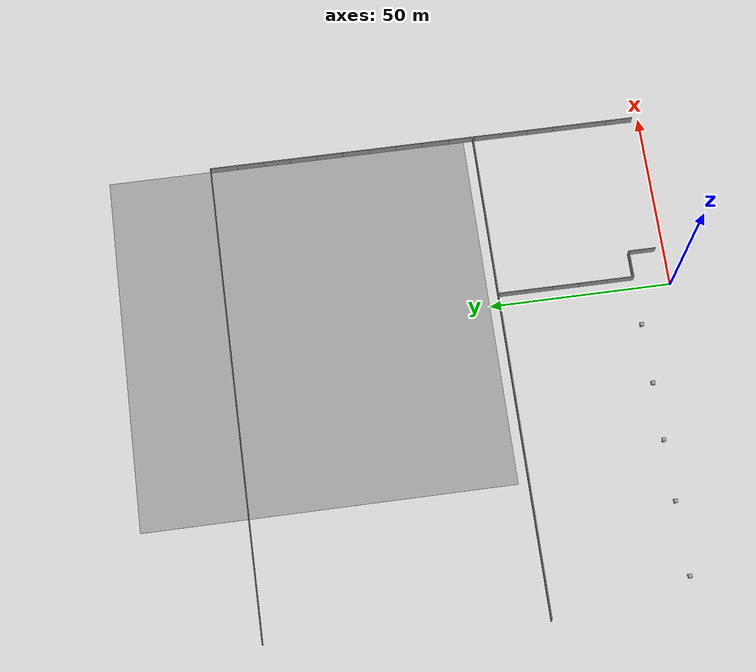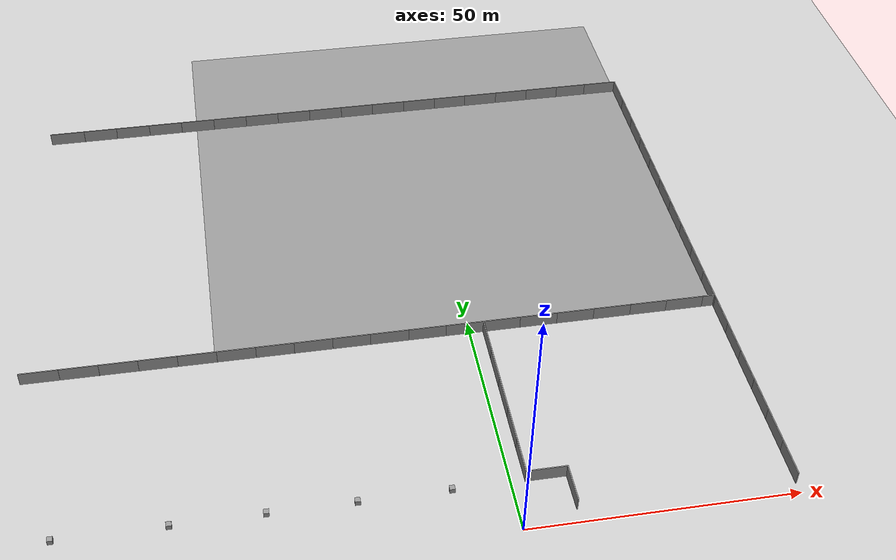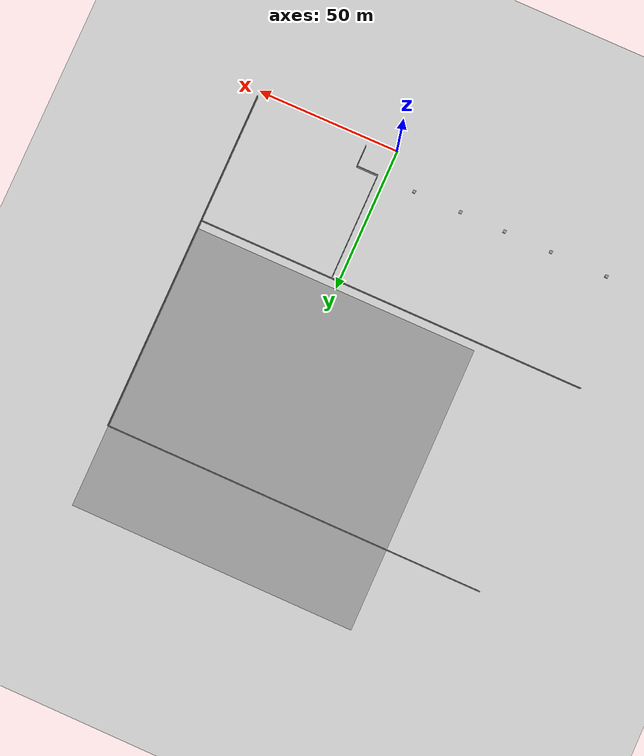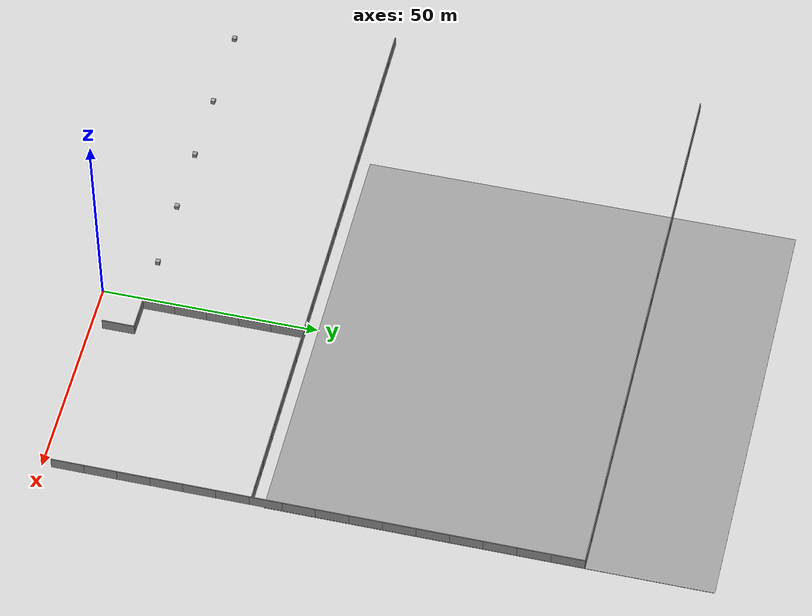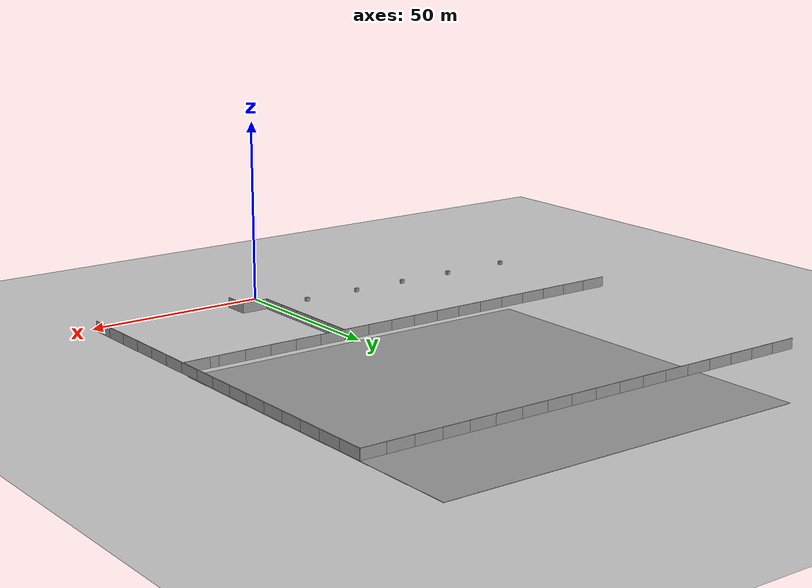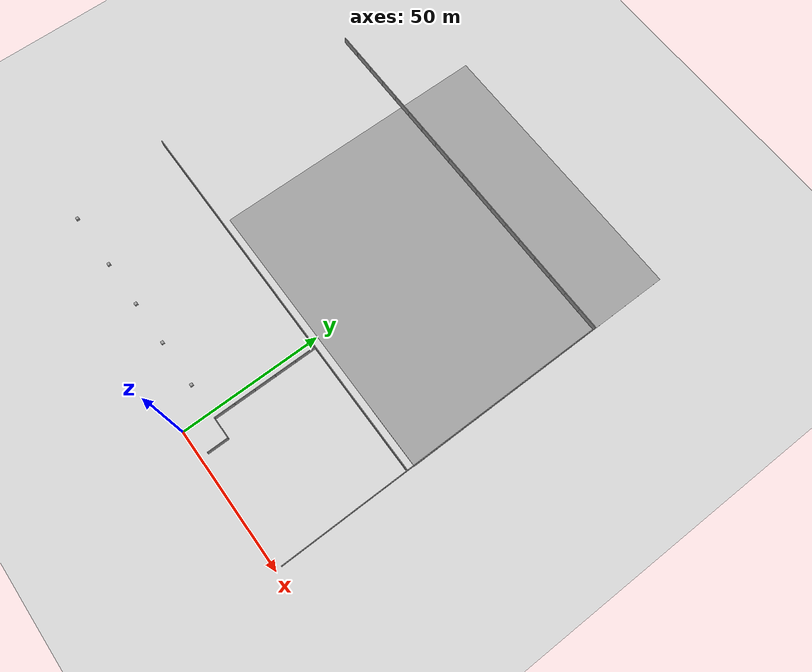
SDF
<sdf version="1.7">
 <world name="default">
  <model name="ground_plane">
   <static>1</static>
   <link name="link">
    <collision name="collision">
     <geometry><plane><normal>0 0 1</normal><size>100 100</size></plane></geometry>
     <surface>
      <contact><collide_bitmask>65535</collide_bitmask></contact>
      <friction><ode><mu>100</mu><mu2>50</mu2></ode></friction>
     </surface>
    </collision>
    <visual name="visual">
     <cast_shadows>0</cast_shadows>
     <geometry><plane><normal>0 0 1</normal><size>100 100</size></plane></geometry>
     <material>
      <script><uri>file://media/materials/scripts/gazebo.material</uri><name>Gazebo/Grey</name></script>
     </material>
    </visual>
   </link>
  </model>
  <model name="ground_plane_0">
   <static>1</static>
   <link name="link">
    <collision name="collision">
     <geometry><plane><normal>0 0 1</normal><size>100 100</size></plane></geometry>
     <surface>
      <contact><collide_bitmask>65535</collide_bitmask></contact>
      <friction><ode><mu>100</mu><mu2>50</mu2></ode></friction>
     </surface>
    </collision>
    <visual name="visual">
     <cast_shadows>0</cast_shadows>
     <geometry><plane><normal>0 0 1</normal><size>100 100</size></plane></geometry>
     <material>
      <script><uri>file://media/materials/scripts/gazebo.material</uri><name>Gazebo/Grey</name></script>
     </material>
    </visual>
   </link>
   <pose>0.002609 100.193 0 0 -0 0</pose>
  </model>
  <model name="grey_wall_clone_21_clone_21_clone_7">
   <static>1</static>
   <link name="link">
    <pose>0 0 1.4 0 -0 0</pose>
    <collision name="collision"><geometry><box><size>7.5 0.2 2.8</size></box></geometry></collision>
    <visual name="visual">
     <cast_shadows>0</cast_shadows>
     <geometry><box><size>7.5 0.2 2.8</size></box></geometry>
     <material>
      <script>
       <uri>model://grey_wall/materials/scripts</uri>
       <uri>model://grey_wall/materials/textures</uri>
       <name>vrc/grey_wall</name>
      </script>
     </material>
    </visual>
   </link>
   <pose>-79.2923 121.595 0 0 -0 0</pose>
  </model>
  <model name="grey_wall_clone_21_clone_21_clone_8">
   <static>1</static>
   <link name="link">
    <pose>0 0 1.4 0 -0 0</pose>
    <collision name="collision"><geometry><box><size>7.5 0.2 2.8</size></box></geometry></collision>
    <visual name="visual">
     <cast_shadows>0</cast_shadows>
     <geometry><box><size>7.5 0.2 2.8</size></box></geometry>
     <material>
      <script>
       <uri>model://grey_wall/materials/scripts</uri>
       <uri>model://grey_wall/materials/textures</uri>
       <name>vrc/grey_wall</name>
      </script>
     </material>
    </visual>
   </link>
   <pose>-71.929 121.602 0 0 -0 0</pose>
  </model>
  <model name="grey_wall_clone_21_clone_21_clone_9">
   <static>1</static>
   <link name="link">
    <pose>0 0 1.4 0 -0 0</pose>
    <collision name="collision"><geometry><box><size>7.5 0.2 2.8</size></box></geometry></collision>
    <visual name="visual">
     <cast_shadows>0</cast_shadows>
     <geometry><box><size>7.5 0.2 2.8</size></box></geometry>
     <material>
      <script>
       <uri>model://grey_wall/materials/scripts</uri>
       <uri>model://grey_wall/materials/textures</uri>
       <name>vrc/grey_wall</name>
      </script>
     </material>
    </visual>
   </link>
   <pose>-64.5064 121.602 0 0 -0 0</pose>
  </model>
  <model name="grey_wall_clone_21_clone_21_clone_10">
   <static>1</static>
   <link name="link">
    <pose>0 0 1.4 0 -0 0</pose>
    <collision name="collision"><geometry><box><size>7.5 0.2 2.8</size></box></geometry></collision>
    <visual name="visual">
     <cast_shadows>0</cast_shadows>
     <geometry><box><size>7.5 0.2 2.8</size></box></geometry>
     <material>
      <script>
       <uri>model://grey_wall/materials/scripts</uri>
       <uri>model://grey_wall/materials/textures</uri>
       <name>vrc/grey_wall</name>
      </script>
     </material>
    </visual>
   </link>
   <pose>-57.1247 121.608 0 0 -0 0</pose>
  </model>
  <model name="grey_wall_clone_21_clone_21_clone_11">
   <static>1</static>
   <link name="link">
    <pose>0 0 1.4 0 -0 0</pose>
    <collision name="collision"><geometry><box><size>7.5 0.2 2.8</size></box></geometry></collision>
    <visual name="visual">
     <cast_shadows>0</cast_shadows>
     <geometry><box><size>7.5 0.2 2.8</size></box></geometry>
     <material>
      <script>
       <uri>model://grey_wall/materials/scripts</uri>
       <uri>model://grey_wall/materials/textures</uri>
       <name>vrc/grey_wall</name>
      </script>
     </material>
    </visual>
   </link>
   <pose>-49.6689 121.608 0 0 -0 0</pose>
  </model>
  <model name="grey_wall_clone_21_clone_21_clone_12">
   <static>1</static>
   <link name="link">
    <pose>0 0 1.4 0 -0 0</pose>
    <collision name="collision"><geometry><box><size>7.5 0.2 2.8</size></box></geometry></collision>
    <visual name="visual">
     <cast_shadows>0</cast_shadows>
     <geometry><box><size>7.5 0.2 2.8</size></box></geometry>
     <material>
      <script>
       <uri>model://grey_wall/materials/scripts</uri>
       <uri>model://grey_wall/materials/textures</uri>
       <name>vrc/grey_wall</name>
      </script>
     </material>
    </visual>
   </link>
   <pose>-42.214 121.614 0 0 -0 0</pose>
  </model>
  <model name="grey_wall_clone_21_clone_21_clone_13">
   <static>1</static>
   <link name="link">
    <pose>0 0 1.4 0 -0 0</pose>
    <collision name="collision"><geometry><box><size>7.5 0.2 2.8</size></box></geometry></collision>
    <visual name="visual">
     <cast_shadows>0</cast_shadows>
     <geometry><box><size>7.5 0.2 2.8</size></box></geometry>
     <material>
      <script>
       <uri>model://grey_wall/materials/scripts</uri>
       <uri>model://grey_wall/materials/textures</uri>
       <name>vrc/grey_wall</name>
      </script>
     </material>
    </visual>
   </link>
   <pose>-34.7998 121.616 0 0 -0 0</pose>
  </model>
  <model name="grey_wall_clone_21_clone_21_clone_14">
   <static>1</static>
   <link name="link">
    <pose>0 0 1.4 0 -0 0</pose>
    <collision name="collision"><geometry><box><size>7.5 0.2 2.8</size></box></geometry></collision>
    <visual name="visual">
     <cast_shadows>0</cast_shadows>
     <geometry><box><size>7.5 0.2 2.8</size></box></geometry>
     <material>
      <script>
       <uri>model://grey_wall/materials/scripts</uri>
       <uri>model://grey_wall/materials/textures</uri>
       <name>vrc/grey_wall</name>
      </script>
     </material>
    </visual>
   </link>
   <pose>-27.3968 121.621 0 0 -0 0</pose>
  </model>
  <model name="grey_wall_clone_21_clone_21_clone_15">
   <static>1</static>
   <link name="link">
    <pose>0 0 1.4 0 -0 0</pose>
    <collision name="collision"><geometry><box><size>7.5 0.2 2.8</size></box></geometry></collision>
    <visual name="visual">
     <cast_shadows>0</cast_shadows>
     <geometry><box><size>7.5 0.2 2.8</size></box></geometry>
     <material>
      <script>
       <uri>model://grey_wall/materials/scripts</uri>
       <uri>model://grey_wall/materials/textures</uri>
       <name>vrc/grey_wall</name>
      </script>
     </material>
    </visual>
   </link>
   <pose>-19.9142 121.625 0 0 -0 0</pose>
  </model>
  <model name="grey_wall_clone_21_clone_21_clone_16">
   <static>1</static>
   <link name="link">
    <pose>0 0 1.4 0 -0 0</pose>
    <collision name="collision"><geometry><box><size>7.5 0.2 2.8</size></box></geometry></collision>
    <visual name="visual">
     <cast_shadows>0</cast_shadows>
     <geometry><box><size>7.5 0.2 2.8</size></box></geometry>
     <material>
      <script>
       <uri>model://grey_wall/materials/scripts</uri>
       <uri>model://grey_wall/materials/textures</uri>
       <name>vrc/grey_wall</name>
      </script>
     </material>
    </visual>
   </link>
   <pose>-12.5105 121.626 0 0 -0 0</pose>
  </model>
  <model name="grey_wall_clone_21_clone_21_clone_17">
   <static>1</static>
   <link name="link">
    <pose>0 0 1.4 0 -0 0</pose>
    <collision name="collision"><geometry><box><size>7.5 0.2 2.8</size></box></geometry></collision>
    <visual name="visual">
     <cast_shadows>0</cast_shadows>
     <geometry><box><size>7.5 0.2 2.8</size></box></geometry>
     <material>
      <script>
       <uri>model://grey_wall/materials/scripts</uri>
       <uri>model://grey_wall/materials/textures</uri>
       <name>vrc/grey_wall</name>
      </script>
     </material>
    </visual>
   </link>
   <pose>-5.09047 121.63 0 0 -0 0</pose>
  </model>
  <model name="grey_wall_clone_21_clone_21_clone_18">
   <static>1</static>
   <link name="link">
    <pose>0 0 1.4 0 -0 0</pose>
    <collision name="collision"><geometry><box><size>7.5 0.2 2.8</size></box></geometry></collision>
    <visual name="visual">
     <cast_shadows>0</cast_shadows>
     <geometry><box><size>7.5 0.2 2.8</size></box></geometry>
     <material>
      <script>
       <uri>model://grey_wall/materials/scripts</uri>
       <uri>model://grey_wall/materials/textures</uri>
       <name>vrc/grey_wall</name>
      </script>
     </material>
    </visual>
   </link>
   <pose>2.23805 121.637 0 0 -0 0</pose>
  </model>
  <model name="grey_wall_clone_21_clone_21_clone_19">
   <static>1</static>
   <link name="link">
    <pose>0 0 1.4 0 -0 0</pose>
    <collision name="collision"><geometry><box><size>7.5 0.2 2.8</size></box></geometry></collision>
    <visual name="visual">
     <cast_shadows>0</cast_shadows>
     <geometry><box><size>7.5 0.2 2.8</size></box></geometry>
     <material>
      <script>
       <uri>model://grey_wall/materials/scripts</uri>
       <uri>model://grey_wall/materials/textures</uri>
       <name>vrc/grey_wall</name>
      </script>
     </material>
    </visual>
   </link>
   <pose>9.66218 121.639 0 0 -0 0</pose>
  </model>
  <model name="grey_wall_clone_21_clone_21_clone_20">
   <static>1</static>
   <link name="link">
    <pose>0 0 1.4 0 -0 0</pose>
    <collision name="collision"><geometry><box><size>7.5 0.2 2.8</size></box></geometry></collision>
    <visual name="visual">
     <cast_shadows>0</cast_shadows>
     <geometry><box><size>7.5 0.2 2.8</size></box></geometry>
     <material>
      <script>
       <uri>model://grey_wall/materials/scripts</uri>
       <uri>model://grey_wall/materials/textures</uri>
       <name>vrc/grey_wall</name>
      </script>
     </material>
    </visual>
   </link>
   <pose>17.0328 121.638 0 0 -0 0</pose>
  </model>
  <model name="grey_wall_clone_21_clone_21_clone_21">
   <static>1</static>
   <link name="link">
    <pose>0 0 1.4 0 -0 0</pose>
    <collision name="collision"><geometry><box><size>7.5 0.2 2.8</size></box></geometry></collision>
    <visual name="visual">
     <cast_shadows>0</cast_shadows>
     <geometry><box><size>7.5 0.2 2.8</size></box></geometry>
     <material>
      <script>
       <uri>model://grey_wall/materials/scripts</uri>
       <uri>model://grey_wall/materials/textures</uri>
       <name>vrc/grey_wall</name>
      </script>
     </material>
    </visual>
   </link>
   <pose>24.475 121.644 0 0 -0 0</pose>
  </model>
  <model name="grey_wall_clone_21_clone_21_clone_22">
   <static>1</static>
   <link name="link">
    <pose>0 0 1.4 0 -0 0</pose>
    <collision name="collision"><geometry><box><size>7.5 0.2 2.8</size></box></geometry></collision>
    <visual name="visual">
     <cast_shadows>0</cast_shadows>
     <geometry><box><size>7.5 0.2 2.8</size></box></geometry>
     <material>
      <script>
       <uri>model://grey_wall/materials/scripts</uri>
       <uri>model://grey_wall/materials/textures</uri>
       <name>vrc/grey_wall</name>
      </script>
     </material>
    </visual>
   </link>
   <pose>31.9378 121.656 0 0 -0 0</pose>
  </model>
  <model name="grey_wall_clone_21_clone_21_clone_23">
   <static>1</static>
   <link name="link">
    <pose>0 0 1.4 0 -0 0</pose>
    <collision name="collision"><geometry><box><size>7.5 0.2 2.8</size></box></geometry></collision>
    <visual name="visual">
     <cast_shadows>0</cast_shadows>
     <geometry><box><size>7.5 0.2 2.8</size></box></geometry>
     <material>
      <script>
       <uri>model://grey_wall/materials/scripts</uri>
       <uri>model://grey_wall/materials/textures</uri>
       <name>vrc/grey_wall</name>
      </script>
     </material>
    </visual>
   </link>
   <pose>39.3665 121.653 0 0 -0 0</pose>
  </model>
  <model name="grey_wall_clone_21_clone_21_clone_24">
   <static>1</static>
   <link name="link">
    <pose>0 0 1.4 0 -0 0</pose>
    <collision name="collision"><geometry><box><size>7.5 0.2 2.8</size></box></geometry></collision>
    <visual name="visual">
     <cast_shadows>0</cast_shadows>
     <geometry><box><size>7.5 0.2 2.8</size></box></geometry>
     <material>
      <script>
       <uri>model://grey_wall/materials/scripts</uri>
       <uri>model://grey_wall/materials/textures</uri>
       <name>vrc/grey_wall</name>
      </script>
     </material>
    </visual>
   </link>
   <pose>46.1929 121.652 0 0 -0 0</pose>
  </model>
  <model name="grey_wall_clone_21_clone_20_clone">
   <static>1</static>
   <link name="link">
    <pose>0 0 1.4 0 -0 0</pose>
    <collision name="collision"><geometry><box><size>7.5 0.2 2.8</size></box></geometry></collision>
    <visual name="visual">
     <cast_shadows>0</cast_shadows>
     <geometry><box><size>7.5 0.2 2.8</size></box></geometry>
     <material>
      <script>
       <uri>model://grey_wall/materials/scripts</uri>
       <uri>model://grey_wall/materials/textures</uri>
       <name>vrc/grey_wall</name>
      </script>
     </material>
    </visual>
   </link>
   <pose>49.8458 117.894 0 0 -0 1.57</pose>
  </model>
  <model name="grey_wall_clone_21_clone_20_clone_0">
   <static>1</static>
   <link name="link">
    <pose>0 0 1.4 0 -0 0</pose>
    <collision name="collision"><geometry><box><size>7.5 0.2 2.8</size></box></geometry></collision>
    <visual name="visual">
     <cast_shadows>0</cast_shadows>
     <geometry><box><size>7.5 0.2 2.8</size></box></geometry>
     <material>
      <script>
       <uri>model://grey_wall/materials/scripts</uri>
       <uri>model://grey_wall/materials/textures</uri>
       <name>vrc/grey_wall</name>
      </script>
     </material>
    </visual>
   </link>
   <pose>49.8421 110.417 0 0 -0 1.57</pose>
  </model>
  <model name="grey_wall_clone_21_clone_20_clone_1">
   <static>1</static>
   <link name="link">
    <pose>0 0 1.4 0 -0 0</pose>
    <collision name="collision"><geometry><box><size>7.5 0.2 2.8</size></box></geometry></collision>
    <visual name="visual">
     <cast_shadows>0</cast_shadows>
     <geometry><box><size>7.5 0.2 2.8</size></box></geometry>
     <material>
      <script>
       <uri>model://grey_wall/materials/scripts</uri>
       <uri>model://grey_wall/materials/textures</uri>
       <name>vrc/grey_wall</name>
      </script>
     </material>
    </visual>
   </link>
   <pose>49.8335 102.935 0 0 -0 1.57</pose>
  </model>
  <model name="grey_wall_clone_21_clone_20_clone_2">
   <static>1</static>
   <link name="link">
    <pose>0 0 1.4 0 -0 0</pose>
    <collision name="collision"><geometry><box><size>7.5 0.2 2.8</size></box></geometry></collision>
    <visual name="visual">
     <cast_shadows>0</cast_shadows>
     <geometry><box><size>7.5 0.2 2.8</size></box></geometry>
     <material>
      <script>
       <uri>model://grey_wall/materials/scripts</uri>
       <uri>model://grey_wall/materials/textures</uri>
       <name>vrc/grey_wall</name>
      </script>
     </material>
    </visual>
   </link>
   <pose>49.8257 95.4892 0 0 -0 1.57</pose>
  </model>
  <model name="grey_wall_clone_21_clone_20_clone_3">
   <static>1</static>
   <link name="link">
    <pose>0 0 1.4 0 -0 0</pose>
    <collision name="collision"><geometry><box><size>7.5 0.2 2.8</size></box></geometry></collision>
    <visual name="visual">
     <cast_shadows>0</cast_shadows>
     <geometry><box><size>7.5 0.2 2.8</size></box></geometry>
     <material>
      <script>
       <uri>model://grey_wall/materials/scripts</uri>
       <uri>model://grey_wall/materials/textures</uri>
       <name>vrc/grey_wall</name>
      </script>
     </material>
    </visual>
   </link>
   <pose>49.8177 87.9912 0 0 -0 1.57</pose>
  </model>
  <model name="grey_wall_clone_21_clone_20_clone_4">
   <static>1</static>
   <link name="link">
    <pose>0 0 1.4 0 -0 0</pose>
    <collision name="collision"><geometry><box><size>7.5 0.2 2.8</size></box></geometry></collision>
    <visual name="visual">
     <cast_shadows>0</cast_shadows>
     <geometry><box><size>7.5 0.2 2.8</size></box></geometry>
     <material>
      <script>
       <uri>model://grey_wall/materials/scripts</uri>
       <uri>model://grey_wall/materials/textures</uri>
       <name>vrc/grey_wall</name>
      </script>
     </material>
    </visual>
   </link>
   <pose>49.8117 80.5511 0 0 -0 1.57</pose>
  </model>
  <model name="grey_wall_clone_21_clone_20_clone_5">
   <static>1</static>
   <link name="link">
    <pose>0 0 1.4 0 -0 0</pose>
    <collision name="collision"><geometry><box><size>7.5 0.2 2.8</size></box></geometry></collision>
    <visual name="visual">
     <cast_shadows>0</cast_shadows>
     <geometry><box><size>7.5 0.2 2.8</size></box></geometry>
     <material>
      <script>
       <uri>model://grey_wall/materials/scripts</uri>
       <uri>model://grey_wall/materials/textures</uri>
       <name>vrc/grey_wall</name>
      </script>
     </material>
    </visual>
   </link>
   <pose>49.8001 73.0636 0 0 -0 1.57</pose>
  </model>
  <model name="grey_wall_clone_21_clone_20_clone_6">
   <static>1</static>
   <link name="link">
    <pose>0 0 1.4 0 -0 0</pose>
    <collision name="collision"><geometry><box><size>7.5 0.2 2.8</size></box></geometry></collision>
    <visual name="visual">
     <cast_shadows>0</cast_shadows>
     <geometry><box><size>7.5 0.2 2.8</size></box></geometry>
     <material>
      <script>
       <uri>model://grey_wall/materials/scripts</uri>
       <uri>model://grey_wall/materials/textures</uri>
       <name>vrc/grey_wall</name>
      </script>
     </material>
    </visual>
   </link>
   <pose>49.7987 65.5811 0 0 -0 1.57</pose>
  </model>
  <model name="grey_wall_clone_21_clone_20_clone_7">
   <static>1</static>
   <link name="link">
    <pose>0 0 1.4 0 -0 0</pose>
    <collision name="collision"><geometry><box><size>7.5 0.2 2.8</size></box></geometry></collision>
    <visual name="visual">
     <cast_shadows>0</cast_shadows>
     <geometry><box><size>7.5 0.2 2.8</size></box></geometry>
     <material>
      <script>
       <uri>model://grey_wall/materials/scripts</uri>
       <uri>model://grey_wall/materials/textures</uri>
       <name>vrc/grey_wall</name>
      </script>
     </material>
    </visual>
   </link>
   <pose>49.7903 58.1117 0 0 -0 1.57</pose>
  </model>
  <model name="grey_wall_clone_21_clone_20_clone_8">
   <static>1</static>
   <link name="link">
    <pose>0 0 1.4 0 -0 0</pose>
    <collision name="collision"><geometry><box><size>7.5 0.2 2.8</size></box></geometry></collision>
    <visual name="visual">
     <cast_shadows>0</cast_shadows>
     <geometry><box><size>7.5 0.2 2.8</size></box></geometry>
     <material>
      <script>
       <uri>model://grey_wall/materials/scripts</uri>
       <uri>model://grey_wall/materials/textures</uri>
       <name>vrc/grey_wall</name>
      </script>
     </material>
    </visual>
   </link>
   <pose>49.781 50.6517 0 0 -0 1.57</pose>
  </model>
  <model name="grey_wall_clone_21_clone_20_clone_9">
   <static>1</static>
   <link name="link">
    <pose>0 0 1.4 0 -0 0</pose>
    <collision name="collision"><geometry><box><size>7.5 0.2 2.8</size></box></geometry></collision>
    <visual name="visual">
     <cast_shadows>0</cast_shadows>
     <geometry><box><size>7.5 0.2 2.8</size></box></geometry>
     <material>
      <script>
       <uri>model://grey_wall/materials/scripts</uri>
       <uri>model://grey_wall/materials/textures</uri>
       <name>vrc/grey_wall</name>
      </script>
     </material>
    </visual>
   </link>
   <pose>49.7846 43.1803 0 0 -0 1.57</pose>
  </model>
  <model name="grey_wall_clone_21_clone_20_clone_10">
   <static>1</static>
   <link name="link">
    <pose>0 0 1.4 0 -0 0</pose>
    <collision name="collision"><geometry><box><size>7.5 0.2 2.8</size></box></geometry></collision>
    <visual name="visual">
     <cast_shadows>0</cast_shadows>
     <geometry><box><size>7.5 0.2 2.8</size></box></geometry>
     <material>
      <script>
       <uri>model://grey_wall/materials/scripts</uri>
       <uri>model://grey_wall/materials/textures</uri>
       <name>vrc/grey_wall</name>
      </script>
     </material>
    </visual>
   </link>
   <pose>49.7753 35.7603 0 0 -0 1.57</pose>
  </model>
  <model name="grey_wall_clone_21_clone_20_clone_11">
   <static>1</static>
   <link name="link">
    <pose>0 0 1.4 0 -0 0</pose>
    <collision name="collision"><geometry><box><size>7.5 0.2 2.8</size></box></geometry></collision>
    <visual name="visual">
     <cast_shadows>0</cast_shadows>
     <geometry><box><size>7.5 0.2 2.8</size></box></geometry>
     <material>
      <script>
       <uri>model://grey_wall/materials/scripts</uri>
       <uri>model://grey_wall/materials/textures</uri>
       <name>vrc/grey_wall</name>
      </script>
     </material>
    </visual>
   </link>
   <pose>49.7674 28.3584 0 0 -0 1.57</pose>
  </model>
  <model name="grey_wall_clone_21_clone_20_clone_12">
   <static>1</static>
   <link name="link">
    <pose>0 0 1.4 0 -0 0</pose>
    <collision name="collision"><geometry><box><size>7.5 0.2 2.8</size></box></geometry></collision>
    <visual name="visual">
     <cast_shadows>0</cast_shadows>
     <geometry><box><size>7.5 0.2 2.8</size></box></geometry>
     <material>
      <script>
       <uri>model://grey_wall/materials/scripts</uri>
       <uri>model://grey_wall/materials/textures</uri>
       <name>vrc/grey_wall</name>
      </script>
     </material>
    </visual>
   </link>
   <pose>49.776 20.8614 0 0 -0 1.57</pose>
  </model>
  <model name="grey_wall_clone_21_clone_20_clone_13">
   <static>1</static>
   <link name="link">
    <pose>0 0 1.4 0 -0 0</pose>
    <collision name="collision"><geometry><box><size>7.5 0.2 2.8</size></box></geometry></collision>
    <visual name="visual">
     <cast_shadows>0</cast_shadows>
     <geometry><box><size>7.5 0.2 2.8</size></box></geometry>
     <material>
      <script>
       <uri>model://grey_wall/materials/scripts</uri>
       <uri>model://grey_wall/materials/textures</uri>
       <name>vrc/grey_wall</name>
      </script>
     </material>
    </visual>
   </link>
   <pose>49.7689 13.383 0 0 -0 1.57</pose>
  </model>
  <model name="grey_wall_clone_21_clone_20_clone_14">
   <static>1</static>
   <link name="link">
    <pose>0 0 1.4 0 -0 0</pose>
    <collision name="collision"><geometry><box><size>7.5 0.2 2.8</size></box></geometry></collision>
    <visual name="visual">
     <cast_shadows>0</cast_shadows>
     <geometry><box><size>7.5 0.2 2.8</size></box></geometry>
     <material>
      <script>
       <uri>model://grey_wall/materials/scripts</uri>
       <uri>model://grey_wall/materials/textures</uri>
       <name>vrc/grey_wall</name>
      </script>
     </material>
    </visual>
   </link>
   <pose>49.7614 5.89332 0 0 -0 1.57</pose>
  </model>
  <model name="grey_wall_clone_clone_5">
   <static>1</static>
   <link name="link">
    <pose>0 0 1.4 0 -0 0</pose>
    <collision name="collision"><geometry><box><size>7.5 0.2 2.8</size></box></geometry></collision>
    <visual name="visual">
     <cast_shadows>0</cast_shadows>
     <geometry><box><size>7.5 0.2 2.8</size></box></geometry>
     <material>
      <script>
       <uri>model://grey_wall/materials/scripts</uri>
       <uri>model://grey_wall/materials/textures</uri>
       <name>vrc/grey_wall</name>
      </script>
     </material>
    </visual>
   </link>
   <pose>6.48493 10.1452 0 0 -0 0</pose>
  </model>
  <model name="grey_wall_clone_21_clone_20_clone_13_clone">
   <static>1</static>
   <link name="link">
    <pose>0 0 1.4 0 -0 0</pose>
    <collision name="collision"><geometry><box><size>7.5 0.2 2.8</size></box></geometry></collision>
    <visual name="visual">
     <cast_shadows>0</cast_shadows>
     <geometry><box><size>7.5 0.2 2.8</size></box></geometry>
     <material>
      <script>
       <uri>model://grey_wall/materials/scripts</uri>
       <uri>model://grey_wall/materials/textures</uri>
       <name>vrc/grey_wall</name>
      </script>
     </material>
    </visual>
   </link>
   <pose>10.1575 6.47546 0 0 -0 1.57</pose>
  </model>
  <model name="grey_wall_clone_21_clone_20_clone_13_clone_3_clone_3">
   <static>1</static>
   <link name="link">
    <pose>0 0 1.4 0 -0 0</pose>
    <collision name="collision"><geometry><box><size>7.5 0.2 2.8</size></box></geometry></collision>
    <visual name="visual">
     <cast_shadows>0</cast_shadows>
     <geometry><box><size>7.5 0.2 2.8</size></box></geometry>
     <material>
      <script>
       <uri>model://grey_wall/materials/scripts</uri>
       <uri>model://grey_wall/materials/textures</uri>
       <name>vrc/grey_wall</name>
      </script>
     </material>
    </visual>
   </link>
   <pose>2.64459 13.7844 0 0 -0 1.57</pose>
  </model>
  <model name="grey_wall_clone_21_clone_20_clone_13_clone_3_clone_4">
   <static>1</static>
   <link name="link">
    <pose>0 0 1.4 0 -0 0</pose>
    <collision name="collision"><geometry><box><size>7.5 0.2 2.8</size></box></geometry></collision>
    <visual name="visual">
     <cast_shadows>0</cast_shadows>
     <geometry><box><size>7.5 0.2 2.8</size></box></geometry>
     <material>
      <script>
       <uri>model://grey_wall/materials/scripts</uri>
       <uri>model://grey_wall/materials/textures</uri>
       <name>vrc/grey_wall</name>
      </script>
     </material>
    </visual>
   </link>
   <pose>2.64823 21.2582 0 0 -0 1.57</pose>
  </model>
  <model name="grey_wall_clone_21_clone_20_clone_13_clone_3_clone_5">
   <static>1</static>
   <link name="link">
    <pose>0 0 1.4 0 -0 0</pose>
    <collision name="collision"><geometry><box><size>7.5 0.2 2.8</size></box></geometry></collision>
    <visual name="visual">
     <cast_shadows>0</cast_shadows>
     <geometry><box><size>7.5 0.2 2.8</size></box></geometry>
     <material>
      <script>
       <uri>model://grey_wall/materials/scripts</uri>
       <uri>model://grey_wall/materials/textures</uri>
       <name>vrc/grey_wall</name>
      </script>
     </material>
    </visual>
   </link>
   <pose>2.65433 28.7306 0 0 -0 1.57</pose>
  </model>
  <model name="grey_wall_clone_21_clone_20_clone_13_clone_3_clone_6">
   <static>1</static>
   <link name="link">
    <pose>0 0 1.4 0 -0 0</pose>
    <collision name="collision"><geometry><box><size>7.5 0.2 2.8</size></box></geometry></collision>
    <visual name="visual">
     <cast_shadows>0</cast_shadows>
     <geometry><box><size>7.5 0.2 2.8</size></box></geometry>
     <material>
      <script>
       <uri>model://grey_wall/materials/scripts</uri>
       <uri>model://grey_wall/materials/textures</uri>
       <name>vrc/grey_wall</name>
      </script>
     </material>
    </visual>
   </link>
   <pose>2.66098 36.2088 0 0 -0 1.57</pose>
  </model>
  <model name="grey_wall_clone_21_clone_20_clone_13_clone_3_clone_7">
   <static>1</static>
   <link name="link">
    <pose>0 0 1.4 0 -0 0</pose>
    <collision name="collision"><geometry><box><size>7.5 0.2 2.8</size></box></geometry></collision>
    <visual name="visual">
     <cast_shadows>0</cast_shadows>
     <geometry><box><size>7.5 0.2 2.8</size></box></geometry>
     <material>
      <script>
       <uri>model://grey_wall/materials/scripts</uri>
       <uri>model://grey_wall/materials/textures</uri>
       <name>vrc/grey_wall</name>
      </script>
     </material>
    </visual>
   </link>
   <pose>2.66664 43.6957 0 0 -0 1.57</pose>
  </model>
  <model name="grey_wall_clone_clone_5_clone_clone">
   <static>1</static>
   <link name="link">
    <pose>0 0 1.4 0 -0 0</pose>
    <collision name="collision"><geometry><box><size>7.5 0.2 2.8</size></box></geometry></collision>
    <visual name="visual">
     <cast_shadows>0</cast_shadows>
     <geometry><box><size>7.5 0.2 2.8</size></box></geometry>
     <material>
      <script>
       <uri>model://grey_wall/materials/scripts</uri>
       <uri>model://grey_wall/materials/textures</uri>
       <name>vrc/grey_wall</name>
      </script>
     </material>
    </visual>
   </link>
   <pose>6.31799 47.5177 0 0 -0 0</pose>
  </model>
  <model name="grey_wall_clone_clone_5_clone_clone_0">
   <static>1</static>
   <link name="link">
    <pose>0 0 1.4 0 -0 0</pose>
    <collision name="collision"><geometry><box><size>7.5 0.2 2.8</size></box></geometry></collision>
    <visual name="visual">
     <cast_shadows>0</cast_shadows>
     <geometry><box><size>7.5 0.2 2.8</size></box></geometry>
     <material>
      <script>
       <uri>model://grey_wall/materials/scripts</uri>
       <uri>model://grey_wall/materials/textures</uri>
       <name>vrc/grey_wall</name>
      </script>
     </material>
    </visual>
   </link>
   <pose>13.7763 47.5141 0 0 -0 0</pose>
  </model>
  <model name="grey_wall_clone_clone_5_clone_clone_1">
   <static>1</static>
   <link name="link">
    <pose>0 0 1.4 0 -0 0</pose>
    <collision name="collision"><geometry><box><size>7.5 0.2 2.8</size></box></geometry></collision>
    <visual name="visual">
     <cast_shadows>0</cast_shadows>
     <geometry><box><size>7.5 0.2 2.8</size></box></geometry>
     <material>
      <script>
       <uri>model://grey_wall/materials/scripts</uri>
       <uri>model://grey_wall/materials/textures</uri>
       <name>vrc/grey_wall</name>
      </script>
     </material>
    </visual>
   </link>
   <pose>21.2459 47.5085 0 0 -0 0</pose>
  </model>
  <model name="grey_wall_clone_clone_5_clone_clone_2">
   <static>1</static>
   <link name="link">
    <pose>0 0 1.4 0 -0 0</pose>
    <collision name="collision"><geometry><box><size>7.5 0.2 2.8</size></box></geometry></collision>
    <visual name="visual">
     <cast_shadows>0</cast_shadows>
     <geometry><box><size>7.5 0.2 2.8</size></box></geometry>
     <material>
      <script>
       <uri>model://grey_wall/materials/scripts</uri>
       <uri>model://grey_wall/materials/textures</uri>
       <name>vrc/grey_wall</name>
      </script>
     </material>
    </visual>
   </link>
   <pose>28.6972 47.5084 0 0 -0 0</pose>
  </model>
  <model name="grey_wall_clone_clone_5_clone_clone_3">
   <static>1</static>
   <link name="link">
    <pose>0 0 1.4 0 -0 0</pose>
    <collision name="collision"><geometry><box><size>7.5 0.2 2.8</size></box></geometry></collision>
    <visual name="visual">
     <cast_shadows>0</cast_shadows>
     <geometry><box><size>7.5 0.2 2.8</size></box></geometry>
     <material>
      <script>
       <uri>model://grey_wall/materials/scripts</uri>
       <uri>model://grey_wall/materials/textures</uri>
       <name>vrc/grey_wall</name>
      </script>
     </material>
    </visual>
   </link>
   <pose>36.1214 47.5187 0 0 -0 0</pose>
  </model>
  <model name="grey_wall_clone_clone_5_clone_clone_4">
   <static>1</static>
   <link name="link">
    <pose>0 0 1.4 0 -0 0</pose>
    <collision name="collision"><geometry><box><size>7.5 0.2 2.8</size></box></geometry></collision>
    <visual name="visual">
     <cast_shadows>0</cast_shadows>
     <geometry><box><size>7.5 0.2 2.8</size></box></geometry>
     <material>
      <script>
       <uri>model://grey_wall/materials/scripts</uri>
       <uri>model://grey_wall/materials/textures</uri>
       <name>vrc/grey_wall</name>
      </script>
     </material>
    </visual>
   </link>
   <pose>43.5705 47.5133 0 0 -0 0</pose>
  </model>
  <model name="grey_wall_clone_clone_5_clone_clone_5">
   <static>1</static>
   <link name="link">
    <pose>0 0 1.4 0 -0 0</pose>
    <collision name="collision"><geometry><box><size>7.5 0.2 2.8</size></box></geometry></collision>
    <visual name="visual">
     <cast_shadows>0</cast_shadows>
     <geometry><box><size>7.5 0.2 2.8</size></box></geometry>
     <material>
      <script>
       <uri>model://grey_wall/materials/scripts</uri>
       <uri>model://grey_wall/materials/textures</uri>
       <name>vrc/grey_wall</name>
      </script>
     </material>
    </visual>
   </link>
   <pose>46.1045 47.515 0 0 -0 0</pose>
  </model>
  <model name="unit_box_clone">
   <pose>-10.5778 10.0352 0.499991 0 -0 0</pose>
   <link name="link">
    <inertial>
     <mass>1</mass>
     <inertia>
      <ixx>0.166667</ixx>
      <ixy>0</ixy>
      <ixz>0</ixz>
      <iyy>0.166667</iyy>
      <iyz>0</iyz>
      <izz>0.166667</izz>
     </inertia>
    </inertial>
    <collision name="collision"><geometry><box><size>1 1 1</size></box></geometry></collision>
    <visual name="visual">
     <geometry><box><size>1 1 1</size></box></geometry>
     <material>
      <script><name>Gazebo/Grey</name><uri>file://media/materials/scripts/gazebo.material</uri></script>
     </material>
    </visual>
   </link>
  </model>
  <model name="unit_box_clone_6">
   <pose>-80 10.0363 0.499997 0 5e-06 0</pose>
   <link name="link">
    <inertial>
     <mass>1</mass>
     <inertia>
      <ixx>0.166667</ixx>
      <ixy>0</ixy>
      <ixz>0</ixz>
      <iyy>0.166667</iyy>
      <iyz>0</iyz>
      <izz>0.166667</izz>
     </inertia>
    </inertial>
    <collision name="collision"><geometry><box><size>1 1 1</size></box></geometry></collision>
    <visual name="visual">
     <geometry><box><size>1 1 1</size></box></geometry>
     <material>
      <script><name>Gazebo/Grey</name><uri>file://media/materials/scripts/gazebo.material</uri></script>
     </material>
    </visual>
   </link>
  </model>
  <model name="unit_box_clone_7">
   <pose>-60 10.0293 0.499995 -5e-06 4e-06 -2e-06</pose>
   <link name="link">
    <inertial>
     <mass>1</mass>
     <inertia>
      <ixx>0.166667</ixx>
      <ixy>0</ixy>
      <ixz>0</ixz>
      <iyy>0.166667</iyy>
      <iyz>0</iyz>
      <izz>0.166667</izz>
     </inertia>
    </inertial>
    <collision name="collision"><geometry><box><size>1 1 1</size></box></geometry></collision>
    <visual name="visual">
     <geometry><box><size>1 1 1</size></box></geometry>
     <material>
      <script><name>Gazebo/Grey</name><uri>file://media/materials/scripts/gazebo.material</uri></script>
     </material>
    </visual>
   </link>
  </model>
  <model name="unit_box_clone_8">
   <pose>-43.2561 10.0266 0.499991 0 -0 0</pose>
   <link name="link">
    <inertial>
     <mass>1</mass>
     <inertia>
      <ixx>0.166667</ixx>
      <ixy>0</ixy>
      <ixz>0</ixz>
      <iyy>0.166667</iyy>
      <iyz>0</iyz>
      <izz>0.166667</izz>
     </inertia>
    </inertial>
    <collision name="collision"><geometry><box><size>1 1 1</size></box></geometry></collision>
    <visual name="visual">
     <geometry><box><size>1 1 1</size></box></geometry>
     <material>
      <script><name>Gazebo/Grey</name><uri>file://media/materials/scripts/gazebo.material</uri></script>
     </material>
    </visual>
   </link>
  </model>
  <model name="unit_box_clone_9">
   <pose>-27.3309 10.0163 0.499991 0 -0 0</pose>
   <link name="link">
    <inertial>
     <mass>1</mass>
     <inertia>
      <ixx>0.166667</ixx>
      <ixy>0</ixy>
      <ixz>0</ixz>
      <iyy>0.166667</iyy>
      <iyz>0</iyz>
      <izz>0.166667</izz>
     </inertia>
    </inertial>
    <collision name="collision"><geometry><box><size>1 1 1</size></box></geometry></collision>
    <visual name="visual">
     <geometry><box><size>1 1 1</size></box></geometry>
     <material>
      <script><name>Gazebo/Grey</name><uri>file://media/materials/scripts/gazebo.material</uri></script>
     </material>
    </visual>
   </link>
  </model>
  <model name="grey_wall_clone_21_clone_21_clone_2_clone_clone">
   <static>1</static>
   <link name="link">
    <pose>0 0 1.4 0 -0 0</pose>
    <collision name="collision"><geometry><box><size>7.5 0.2 2.8</size></box></geometry></collision>
    <visual name="visual">
     <cast_shadows>0</cast_shadows>
     <geometry><box><size>7.5 0.2 2.8</size></box></geometry>
     <material>
      <script>
       <uri>model://grey_wall/materials/scripts</uri>
       <uri>model://grey_wall/materials/textures</uri>
       <name>vrc/grey_wall</name>
      </script>
     </material>
    </visual>
   </link>
   <pose>-1.06024 47.5035 0 0 -0 0</pose>
  </model>
  <model name="grey_wall_clone_21_clone_21_clone_2_clone_clone_0">
   <static>1</static>
   <link name="link">
    <pose>0 0 1.4 0 -0 0</pose>
    <collision name="collision"><geometry><box><size>7.5 0.2 2.8</size></box></geometry></collision>
    <visual name="visual">
     <cast_shadows>0</cast_shadows>
     <geometry><box><size>7.5 0.2 2.8</size></box></geometry>
     <material>
      <script>
       <uri>model://grey_wall/materials/scripts</uri>
       <uri>model://grey_wall/materials/textures</uri>
       <name>vrc/grey_wall</name>
      </script>
     </material>
    </visual>
   </link>
   <pose>-8.53625 47.4999 0 0 -0 0</pose>
  </model>
  <model name="grey_wall_clone_21_clone_21_clone_2_clone_clone_1">
   <static>1</static>
   <link name="link">
    <pose>0 0 1.4 0 -0 0</pose>
    <collision name="collision"><geometry><box><size>7.5 0.2 2.8</size></box></geometry></collision>
    <visual name="visual">
     <cast_shadows>0</cast_shadows>
     <geometry><box><size>7.5 0.2 2.8</size></box></geometry>
     <material>
      <script>
       <uri>model://grey_wall/materials/scripts</uri>
       <uri>model://grey_wall/materials/textures</uri>
       <name>vrc/grey_wall</name>
      </script>
     </material>
    </visual>
   </link>
   <pose>-15.9746 47.4992 0 0 -0 0</pose>
  </model>
  <model name="grey_wall_clone_21_clone_21_clone_2_clone_clone_2">
   <static>1</static>
   <link name="link">
    <pose>0 0 1.4 0 -0 0</pose>
    <collision name="collision"><geometry><box><size>7.5 0.2 2.8</size></box></geometry></collision>
    <visual name="visual">
     <cast_shadows>0</cast_shadows>
     <geometry><box><size>7.5 0.2 2.8</size></box></geometry>
     <material>
      <script>
       <uri>model://grey_wall/materials/scripts</uri>
       <uri>model://grey_wall/materials/textures</uri>
       <name>vrc/grey_wall</name>
      </script>
     </material>
    </visual>
   </link>
   <pose>-23.4008 47.5014 0 0 -0 0</pose>
  </model>
  <model name="grey_wall_clone_21_clone_21_clone_2_clone_clone_3">
   <static>1</static>
   <link name="link">
    <pose>0 0 1.4 0 -0 0</pose>
    <collision name="collision"><geometry><box><size>7.5 0.2 2.8</size></box></geometry></collision>
    <visual name="visual">
     <cast_shadows>0</cast_shadows>
     <geometry><box><size>7.5 0.2 2.8</size></box></geometry>
     <material>
      <script>
       <uri>model://grey_wall/materials/scripts</uri>
       <uri>model://grey_wall/materials/textures</uri>
       <name>vrc/grey_wall</name>
      </script>
     </material>
    </visual>
   </link>
   <pose>-30.8705 47.4993 0 0 -0 0</pose>
  </model>
  <model name="grey_wall_clone_21_clone_21_clone_2_clone_clone_4">
   <static>1</static>
   <link name="link">
    <pose>0 0 1.4 0 -0 0</pose>
    <collision name="collision"><geometry><box><size>7.5 0.2 2.8</size></box></geometry></collision>
    <visual name="visual">
     <cast_shadows>0</cast_shadows>
     <geometry><box><size>7.5 0.2 2.8</size></box></geometry>
     <material>
      <script>
       <uri>model://grey_wall/materials/scripts</uri>
       <uri>model://grey_wall/materials/textures</uri>
       <name>vrc/grey_wall</name>
      </script>
     </material>
    </visual>
   </link>
   <pose>-38.2865 47.5003 0 0 -0 0</pose>
  </model>
  <model name="grey_wall_clone_21_clone_21_clone_2_clone_clone_5">
   <static>1</static>
   <link name="link">
    <pose>0 0 1.4 0 -0 0</pose>
    <collision name="collision"><geometry><box><size>7.5 0.2 2.8</size></box></geometry></collision>
    <visual name="visual">
     <cast_shadows>0</cast_shadows>
     <geometry><box><size>7.5 0.2 2.8</size></box></geometry>
     <material>
      <script>
       <uri>model://grey_wall/materials/scripts</uri>
       <uri>model://grey_wall/materials/textures</uri>
       <name>vrc/grey_wall</name>
      </script>
     </material>
    </visual>
   </link>
   <pose>-45.7777 47.4964 0 0 -0 0</pose>
  </model>
  <model name="grey_wall_clone_21_clone_21_clone_2_clone_clone_6">
   <static>1</static>
   <link name="link">
    <pose>0 0 1.4 0 -0 0</pose>
    <collision name="collision"><geometry><box><size>7.5 0.2 2.8</size></box></geometry></collision>
    <visual name="visual">
     <cast_shadows>0</cast_shadows>
     <geometry><box><size>7.5 0.2 2.8</size></box></geometry>
     <material>
      <script>
       <uri>model://grey_wall/materials/scripts</uri>
       <uri>model://grey_wall/materials/textures</uri>
       <name>vrc/grey_wall</name>
      </script>
     </material>
    </visual>
   </link>
   <pose>-53.258 47.4982 0 0 -0 0</pose>
  </model>
  <model name="grey_wall_clone_21_clone_21_clone_2_clone_clone_7">
   <static>1</static>
   <link name="link">
    <pose>0 0 1.4 0 -0 0</pose>
    <collision name="collision"><geometry><box><size>7.5 0.2 2.8</size></box></geometry></collision>
    <visual name="visual">
     <cast_shadows>0</cast_shadows>
     <geometry><box><size>7.5 0.2 2.8</size></box></geometry>
     <material>
      <script>
       <uri>model://grey_wall/materials/scripts</uri>
       <uri>model://grey_wall/materials/textures</uri>
       <name>vrc/grey_wall</name>
      </script>
     </material>
    </visual>
   </link>
   <pose>-60.7204 47.5007 0 0 -0 0</pose>
  </model>
  <model name="grey_wall_clone_21_clone_21_clone_2_clone_clone_8">
   <static>1</static>
   <link name="link">
    <pose>0 0 1.4 0 -0 0</pose>
    <collision name="collision"><geometry><box><size>7.5 0.2 2.8</size></box></geometry></collision>
    <visual name="visual">
     <cast_shadows>0</cast_shadows>
     <geometry><box><size>7.5 0.2 2.8</size></box></geometry>
     <material>
      <script>
       <uri>model://grey_wall/materials/scripts</uri>
       <uri>model://grey_wall/materials/textures</uri>
       <name>vrc/grey_wall</name>
      </script>
     </material>
    </visual>
   </link>
   <pose>-68.2205 47.5094 0 0 -0 0</pose>
  </model>
  <model name="grey_wall_clone_21_clone_21_clone_2_clone_clone_9">
   <static>1</static>
   <link name="link">
    <pose>0 0 1.4 0 -0 0</pose>
    <collision name="collision"><geometry><box><size>7.5 0.2 2.8</size></box></geometry></collision>
    <visual name="visual">
     <cast_shadows>0</cast_shadows>
     <geometry><box><size>7.5 0.2 2.8</size></box></geometry>
     <material>
      <script>
       <uri>model://grey_wall/materials/scripts</uri>
       <uri>model://grey_wall/materials/textures</uri>
       <name>vrc/grey_wall</name>
      </script>
     </material>
    </visual>
   </link>
   <pose>-75.6578 47.5069 0 0 -0 0</pose>
  </model>
  <model name="grey_wall_clone_21_clone_21_clone_2_clone_clone_10">
   <static>1</static>
   <link name="link">
    <pose>0 0 1.4 0 -0 0</pose>
    <collision name="collision"><geometry><box><size>7.5 0.2 2.8</size></box></geometry></collision>
    <visual name="visual">
     <cast_shadows>0</cast_shadows>
     <geometry><box><size>7.5 0.2 2.8</size></box></geometry>
     <material>
      <script>
       <uri>model://grey_wall/materials/scripts</uri>
       <uri>model://grey_wall/materials/textures</uri>
       <name>vrc/grey_wall</name>
      </script>
     </material>
    </visual>
   </link>
   <pose>-83.1066 47.5062 0 0 -0 0</pose>
  </model>
 </world>
</sdf>
